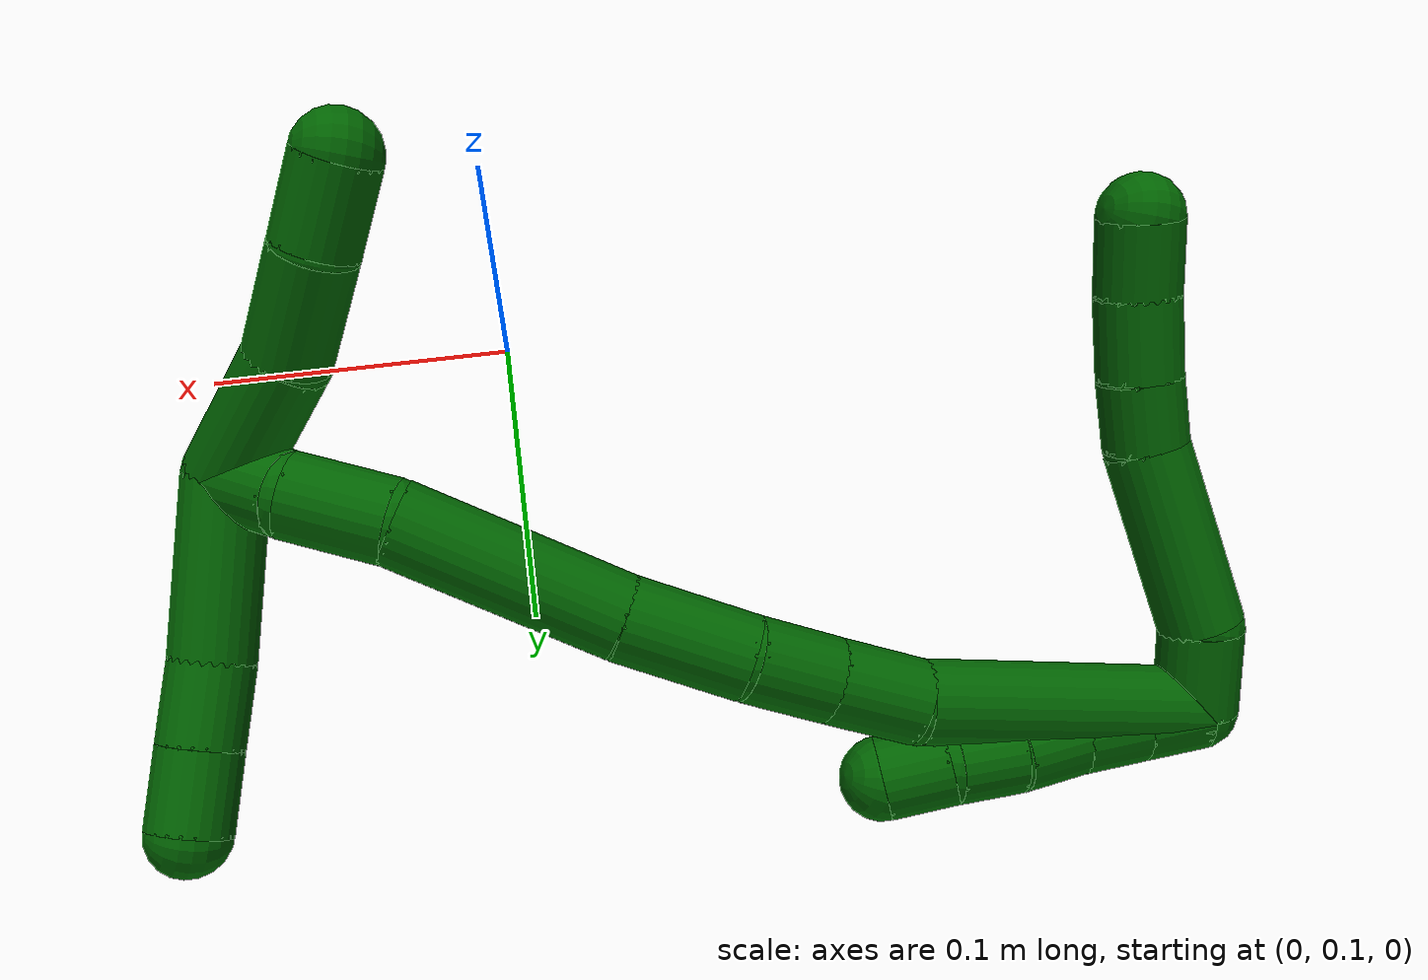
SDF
<sdf version="1.7">
 <world name="default">
  <model name="photoneo_s_sensor">
   <static>1</static>
   <pose>0 0 2 1.57079 1.57079 3.14159</pose>
   <link name="link">
    <inertial><mass>0.1</mass></inertial>
    <sensor name="sensor" type="depth">
     <update_rate>30</update_rate>
     <camera>
      <horizontal_fov>1.22</horizontal_fov>
      <image><width>1920</width><height>1200</height><format>B8G8R8</format></image>
      <clip><near>0.1</near><far>4</far></clip>
      <depth_camera><output>points</output></depth_camera>
     </camera>
     <plugin name="camera_plugin" filename="libgazebo_ros_depth_camera.so">
      <baseline>0.2</baseline>
      <alwaysOn>1</alwaysOn>
      <updateRate>0.0</updateRate>
      <cameraName>camera_ir</cameraName>
      <imageTopicName>/camera/color/image_raw</imageTopicName>
      <cameraInfoTopicName>/camera/color/camera_info</cameraInfoTopicName>
      <depthImageTopicName>/camera/depth/image_raw</depthImageTopicName>
      <depthImageCameraInfoTopicName>/camera/depth/camera_info</depthImageCameraInfoTopicName>
      <pointCloudTopicName>/camera/depth/points</pointCloudTopicName>
      <frameName>fr_optical</frameName>
      <pointCloudCutoff>0.1</pointCloudCutoff>
      <pointCloudCutoffMax>2.0</pointCloudCutoffMax>
      <distortionK1>0</distortionK1>
      <distortionK2>0</distortionK2>
      <distortionK3>0</distortionK3>
      <distortionT1>0</distortionT1>
      <distortionT2>0</distortionT2>
      <CxPrime>0</CxPrime>
      <Cx>0</Cx>
      <Cy>0</Cy>
      <focalLength>0</focalLength>
      <hackBaseline>0</hackBaseline>
     </plugin>
    </sensor>
   </link>
  </model>
  <model name="bin">
   <static>1</static>
   <link name="bottom">
    <collision name="collision-bottom">
     <pose>0 0 -0.01 0 -0 0</pose>
     <geometry><box><size>0.8 0.6 0.02</size></box></geometry>
     <surface>
      <friction><ode><mu>100</mu><mu2>100</mu2></ode></friction>
      <contact><collide_bitmask>65535</collide_bitmask></contact>
     </surface>
    </collision>
   </link>
   <link name="west_wall">
    <collision name="collision-west_wall">
     <pose>-0.41 0 0.1 0 -0 0</pose>
     <geometry><box><size>0.02 0.6 0.2</size></box></geometry>
     <surface>
      <friction><ode><mu>100</mu><mu2>100</mu2></ode></friction>
      <contact><collide_bitmask>65535</collide_bitmask></contact>
     </surface>
    </collision>
   </link>
   <link name="east_wall">
    <collision name="collision-east_wall">
     <pose>0.41 0 0.1 0 -0 0</pose>
     <geometry><box><size>0.02 0.6 0.2</size></box></geometry>
     <surface>
      <friction><ode><mu>100</mu><mu2>100</mu2></ode></friction>
      <contact><collide_bitmask>65535</collide_bitmask></contact>
     </surface>
    </collision>
   </link>
   <link name="south_wall">
    <collision name="collision-south_wall">
     <pose>0 -0.31 0.1 0 -0 0</pose>
     <geometry><box><size>0.8 0.02 0.2</size></box></geometry>
     <surface>
      <friction><ode><mu>100</mu><mu2>100</mu2></ode></friction>
      <contact><collide_bitmask>65535</collide_bitmask></contact>
     </surface>
    </collision>
   </link>
   <link name="north_wall">
    <collision name="collision-north_wall">
     <pose>0 0.31 0.1 0 -0 0</pose>
     <geometry><box><size>0.8 0.02 0.2</size></box></geometry>
     <surface>
      <friction><ode><mu>100</mu><mu2>100</mu2></ode></friction>
      <contact><collide_bitmask>65535</collide_bitmask></contact>
     </surface>
    </collision>
   </link>
  </model>
  <model name="6">
   <static>0</static>
   <link name="6">
    <collision name="collision-cylinder-e_1_2_8">
     <pose>0.011835 0.004859 -0.003293 -2.16646 1.11037 -1.72693</pose>
     <geometry><cylinder><radius>0.0125</radius><length>0.026421</length></cylinder></geometry>
     <surface>
      <friction><ode><mu>1.16</mu><mu2>1.16</mu2><slip1>0</slip1><slip2>0</slip2></ode></friction>
      <contact><ode><kp>1e+06</kp><kd>1</kd><max_vel>0</max_vel><min_depth>0.001</min_depth></ode></contact>
     </surface>
    </collision>
    <visual name="visual-cylinder-e_1_2_8">
     <pose>0.011835 0.004859 -0.003293 -2.16646 1.11037 -1.72693</pose>
     <geometry><cylinder><radius>0.0125</radius><length>0.026421</length></cylinder></geometry>
     <material><ambient>0 0.392157 0.003922 1</ambient></material>
    </visual>
    <collision name="collision-cylinder-e_2_8_9">
     <pose>0.048466 0.012934 -0.020066 -2.90734 1.06117 -2.74574</pose>
     <geometry><cylinder><radius>0.0125</radius><length>0.056812</length></cylinder></geometry>
     <surface>
      <friction><ode><mu>1.16</mu><mu2>1.16</mu2><slip1>0</slip1><slip2>0</slip2></ode></friction>
      <contact><ode><kp>1e+06</kp><kd>1</kd><max_vel>0</max_vel><min_depth>0.001</min_depth></ode></contact>
     </surface>
    </collision>
    <visual name="visual-cylinder-e_2_8_9">
     <pose>0.048466 0.012934 -0.020066 -2.90734 1.06117 -2.74574</pose>
     <geometry><cylinder><radius>0.0125</radius><length>0.056812</length></cylinder></geometry>
     <material><ambient>0 0.392157 0.003922 1</ambient></material>
    </visual>
    <collision name="collision-cylinder-e_3_9_10">
     <pose>0.082395 0.019048 -0.037292 -2.48337 1.09239 -2.11781</pose>
     <geometry><cylinder><radius>0.0125</radius><length>0.020575</length></cylinder></geometry>
     <surface>
      <friction><ode><mu>1.16</mu><mu2>1.16</mu2><slip1>0</slip1><slip2>0</slip2></ode></friction>
      <contact><ode><kp>1e+06</kp><kd>1</kd><max_vel>0</max_vel><min_depth>0.001</min_depth></ode></contact>
     </surface>
    </collision>
    <visual name="visual-cylinder-e_3_9_10">
     <pose>0.082395 0.019048 -0.037292 -2.48337 1.09239 -2.11781</pose>
     <geometry><cylinder><radius>0.0125</radius><length>0.020575</length></cylinder></geometry>
     <material><ambient>0 0.392157 0.003922 1</ambient></material>
    </visual>
    <collision name="collision-cylinder-e_4_10_11">
     <pose>0.102312 0.025663 -0.044784 -2.35995 1.11573 -1.97443</pose>
     <geometry><cylinder><radius>0.0125</radius><length>0.024013</length></cylinder></geometry>
     <surface>
      <friction><ode><mu>1.16</mu><mu2>1.16</mu2><slip1>0</slip1><slip2>0</slip2></ode></friction>
      <contact><ode><kp>1e+06</kp><kd>1</kd><max_vel>0</max_vel><min_depth>0.001</min_depth></ode></contact>
     </surface>
    </collision>
    <visual name="visual-cylinder-e_4_10_11">
     <pose>0.102312 0.025663 -0.044784 -2.35995 1.11573 -1.97443</pose>
     <geometry><cylinder><radius>0.0125</radius><length>0.024013</length></cylinder></geometry>
     <material><ambient>0 0.392157 0.003922 1</ambient></material>
    </visual>
    <collision name="collision-cylinder-e_5_11_6">
     <pose>0.122785 0.033682 -0.051784 -2.21849 1.06277 -1.73702</pose>
     <geometry><cylinder><radius>0.0125</radius><length>0.022179</length></cylinder></geometry>
     <surface>
      <friction><ode><mu>1.16</mu><mu2>1.16</mu2><slip1>0</slip1><slip2>0</slip2></ode></friction>
      <contact><ode><kp>1e+06</kp><kd>1</kd><max_vel>0</max_vel><min_depth>0.001</min_depth></ode></contact>
     </surface>
    </collision>
    <visual name="visual-cylinder-e_5_11_6">
     <pose>0.122785 0.033682 -0.051784 -2.21849 1.06277 -1.73702</pose>
     <geometry><cylinder><radius>0.0125</radius><length>0.022179</length></cylinder></geometry>
     <material><ambient>0 0.392157 0.003922 1</ambient></material>
    </visual>
    <collision name="collision-cylinder-e_1_2_12">
     <pose>-0.002459 -0.002337 -0.009407 2.89813 -0.248399 -1.59108</pose>
     <geometry><cylinder><radius>0.0125</radius><length>0.02</length></cylinder></geometry>
     <surface>
      <friction><ode><mu>1.16</mu><mu2>1.16</mu2><slip1>0</slip1><slip2>0</slip2></ode></friction>
      <contact><ode><kp>1e+06</kp><kd>1</kd><max_vel>0</max_vel><min_depth>0.001</min_depth></ode></contact>
     </surface>
    </collision>
    <visual name="visual-cylinder-e_1_2_12">
     <pose>-0.002459 -0.002337 -0.009407 2.89813 -0.248399 -1.59108</pose>
     <geometry><cylinder><radius>0.0125</radius><length>0.02</length></cylinder></geometry>
     <material><ambient>0 0.392157 0.003922 1</ambient></material>
    </visual>
    <collision name="collision-cylinder-e_2_12_13">
     <pose>-0.007425 -0.006981 -0.028216 2.90092 -0.253485 -1.62318</pose>
     <geometry><cylinder><radius>0.0125</radius><length>0.02</length></cylinder></geometry>
     <surface>
      <friction><ode><mu>1.16</mu><mu2>1.16</mu2><slip1>0</slip1><slip2>0</slip2></ode></friction>
      <contact><ode><kp>1e+06</kp><kd>1</kd><max_vel>0</max_vel><min_depth>0.001</min_depth></ode></contact>
     </surface>
    </collision>
    <visual name="visual-cylinder-e_2_12_13">
     <pose>-0.007425 -0.006981 -0.028216 2.90092 -0.253485 -1.62318</pose>
     <geometry><cylinder><radius>0.0125</radius><length>0.02</length></cylinder></geometry>
     <material><ambient>0 0.392157 0.003922 1</ambient></material>
    </visual>
    <collision name="collision-cylinder-e_3_13_14">
     <pose>-0.013028 -0.010827 -0.047001 2.97899 -0.314658 -2.19263</pose>
     <geometry><cylinder><radius>0.0125</radius><length>0.02</length></cylinder></geometry>
     <surface>
      <friction><ode><mu>1.16</mu><mu2>1.16</mu2><slip1>0</slip1><slip2>0</slip2></ode></friction>
      <contact><ode><kp>1e+06</kp><kd>1</kd><max_vel>0</max_vel><min_depth>0.001</min_depth></ode></contact>
     </surface>
    </collision>
    <visual name="visual-cylinder-e_3_13_14">
     <pose>-0.013028 -0.010827 -0.047001 2.97899 -0.314658 -2.19263</pose>
     <geometry><cylinder><radius>0.0125</radius><length>0.02</length></cylinder></geometry>
     <material><ambient>0 0.392157 0.003922 1</ambient></material>
    </visual>
    <collision name="collision-cylinder-e_4_14_15">
     <pose>-0.01834 -0.01462 -0.065872 2.9084 -0.223644 -1.52864</pose>
     <geometry><cylinder><radius>0.0125</radius><length>0.02</length></cylinder></geometry>
     <surface>
      <friction><ode><mu>1.16</mu><mu2>1.16</mu2><slip1>0</slip1><slip2>0</slip2></ode></friction>
      <contact><ode><kp>1e+06</kp><kd>1</kd><max_vel>0</max_vel><min_depth>0.001</min_depth></ode></contact>
     </surface>
    </collision>
    <visual name="visual-cylinder-e_4_14_15">
     <pose>-0.01834 -0.01462 -0.065872 2.9084 -0.223644 -1.52864</pose>
     <geometry><cylinder><radius>0.0125</radius><length>0.02</length></cylinder></geometry>
     <material><ambient>0 0.392157 0.003922 1</ambient></material>
    </visual>
    <collision name="collision-cylinder-e_5_15_5">
     <pose>-0.02337 -0.021787 -0.083602 2.60404 -0.28504 -0.960536</pose>
     <geometry><cylinder><radius>0.0125</radius><length>0.02</length></cylinder></geometry>
     <surface>
      <friction><ode><mu>1.16</mu><mu2>1.16</mu2><slip1>0</slip1><slip2>0</slip2></ode></friction>
      <contact><ode><kp>1e+06</kp><kd>1</kd><max_vel>0</max_vel><min_depth>0.001</min_depth></ode></contact>
     </surface>
    </collision>
    <visual name="visual-cylinder-e_5_15_5">
     <pose>-0.02337 -0.021787 -0.083602 2.60404 -0.28504 -0.960536</pose>
     <geometry><cylinder><radius>0.0125</radius><length>0.02</length></cylinder></geometry>
     <material><ambient>0 0.392157 0.003922 1</ambient></material>
    </visual>
    <collision name="collision-cylinder-e_1_2_16">
     <pose>-0.001981 -0.005892 -0.044954 3.01126 -0.043666 -0.645803</pose>
     <geometry><cylinder><radius>0.0125</radius><length>0.090764</length></cylinder></geometry>
     <surface>
      <friction><ode><mu>1.16</mu><mu2>1.16</mu2><slip1>0</slip1><slip2>0</slip2></ode></friction>
      <contact><ode><kp>1e+06</kp><kd>1</kd><max_vel>0</max_vel><min_depth>0.001</min_depth></ode></contact>
     </surface>
    </collision>
    <visual name="visual-cylinder-e_1_2_16">
     <pose>-0.001981 -0.005892 -0.044954 3.01126 -0.043666 -0.645803</pose>
     <geometry><cylinder><radius>0.0125</radius><length>0.090764</length></cylinder></geometry>
     <material><ambient>0 0.392157 0.003922 1</ambient></material>
    </visual>
    <collision name="collision-cylinder-e_2_16_17">
     <pose>-0.001712 -0.013903 -0.103143 2.98292 0.166359 1.61831</pose>
     <geometry><cylinder><radius>0.0125</radius><length>0.02718</length></cylinder></geometry>
     <surface>
      <friction><ode><mu>1.16</mu><mu2>1.16</mu2><slip1>0</slip1><slip2>0</slip2></ode></friction>
      <contact><ode><kp>1e+06</kp><kd>1</kd><max_vel>0</max_vel><min_depth>0.001</min_depth></ode></contact>
     </surface>
    </collision>
    <visual name="visual-cylinder-e_2_16_17">
     <pose>-0.001712 -0.013903 -0.103143 2.98292 0.166359 1.61831</pose>
     <geometry><cylinder><radius>0.0125</radius><length>0.02718</length></cylinder></geometry>
     <material><ambient>0 0.392157 0.003922 1</ambient></material>
    </visual>
    <collision name="collision-cylinder-e_3_17_18">
     <pose>0.002722 -0.017497 -0.128614 3.02149 0.175309 1.94156</pose>
     <geometry><cylinder><radius>0.0125</radius><length>0.025036</length></cylinder></geometry>
     <surface>
      <friction><ode><mu>1.16</mu><mu2>1.16</mu2><slip1>0</slip1><slip2>0</slip2></ode></friction>
      <contact><ode><kp>1e+06</kp><kd>1</kd><max_vel>0</max_vel><min_depth>0.001</min_depth></ode></contact>
     </surface>
    </collision>
    <visual name="visual-cylinder-e_3_17_18">
     <pose>0.002722 -0.017497 -0.128614 3.02149 0.175309 1.94156</pose>
     <geometry><cylinder><radius>0.0125</radius><length>0.025036</length></cylinder></geometry>
     <material><ambient>0 0.392157 0.003922 1</ambient></material>
    </visual>
    <collision name="collision-cylinder-e_4_18_19">
     <pose>0.009349 -0.024031 -0.158143 2.85709 0.241819 1.40708</pose>
     <geometry><cylinder><radius>0.0125</radius><length>0.037111</length></cylinder></geometry>
     <surface>
      <friction><ode><mu>1.16</mu><mu2>1.16</mu2><slip1>0</slip1><slip2>0</slip2></ode></friction>
      <contact><ode><kp>1e+06</kp><kd>1</kd><max_vel>0</max_vel><min_depth>0.001</min_depth></ode></contact>
     </surface>
    </collision>
    <visual name="visual-cylinder-e_4_18_19">
     <pose>0.009349 -0.024031 -0.158143 2.85709 0.241819 1.40708</pose>
     <geometry><cylinder><radius>0.0125</radius><length>0.037111</length></cylinder></geometry>
     <material><ambient>0 0.392157 0.003922 1</ambient></material>
    </visual>
    <collision name="collision-cylinder-e_5_19_20">
     <pose>0.024646 -0.037658 -0.206342 2.8711 0.326293 1.76002</pose>
     <geometry><cylinder><radius>0.0125</radius><length>0.06772</length></cylinder></geometry>
     <surface>
      <friction><ode><mu>1.16</mu><mu2>1.16</mu2><slip1>0</slip1><slip2>0</slip2></ode></friction>
      <contact><ode><kp>1e+06</kp><kd>1</kd><max_vel>0</max_vel><min_depth>0.001</min_depth></ode></contact>
     </surface>
    </collision>
    <visual name="visual-cylinder-e_5_19_20">
     <pose>0.024646 -0.037658 -0.206342 2.8711 0.326293 1.76002</pose>
     <geometry><cylinder><radius>0.0125</radius><length>0.06772</length></cylinder></geometry>
     <material><ambient>0 0.392157 0.003922 1</ambient></material>
    </visual>
    <collision name="collision-cylinder-e_6_20_21">
     <pose>0.038526 -0.052878 -0.250587 2.67902 0.200371 0.806862</pose>
     <geometry><cylinder><radius>0.0125</radius><length>0.030415</length></cylinder></geometry>
     <surface>
      <friction><ode><mu>1.16</mu><mu2>1.16</mu2><slip1>0</slip1><slip2>0</slip2></ode></friction>
      <contact><ode><kp>1e+06</kp><kd>1</kd><max_vel>0</max_vel><min_depth>0.001</min_depth></ode></contact>
     </surface>
    </collision>
    <visual name="visual-cylinder-e_6_20_21">
     <pose>0.038526 -0.052878 -0.250587 2.67902 0.200371 0.806862</pose>
     <geometry><cylinder><radius>0.0125</radius><length>0.030415</length></cylinder></geometry>
     <material><ambient>0 0.392157 0.003922 1</ambient></material>
    </visual>
    <collision name="collision-cylinder-e_7_21_1">
     <pose>0.044284 -0.067176 -0.271174 2.32958 0.253576 0.576521</pose>
     <geometry><cylinder><radius>0.0125</radius><length>0.021773</length></cylinder></geometry>
     <surface>
      <friction><ode><mu>1.16</mu><mu2>1.16</mu2><slip1>0</slip1><slip2>0</slip2></ode></friction>
      <contact><ode><kp>1e+06</kp><kd>1</kd><max_vel>0</max_vel><min_depth>0.001</min_depth></ode></contact>
     </surface>
    </collision>
    <visual name="visual-cylinder-e_7_21_1">
     <pose>0.044284 -0.067176 -0.271174 2.32958 0.253576 0.576521</pose>
     <geometry><cylinder><radius>0.0125</radius><length>0.021773</length></cylinder></geometry>
     <material><ambient>0 0.392157 0.003922 1</ambient></material>
    </visual>
    <collision name="collision-cylinder-e_1_1_22">
     <pose>0.021469 -0.079048 -0.277272 1.30427 -1.40103 -1.14404</pose>
     <geometry><cylinder><radius>0.0125</radius><length>0.051837</length></cylinder></geometry>
     <surface>
      <friction><ode><mu>1.16</mu><mu2>1.16</mu2><slip1>0</slip1><slip2>0</slip2></ode></friction>
      <contact><ode><kp>1e+06</kp><kd>1</kd><max_vel>0</max_vel><min_depth>0.001</min_depth></ode></contact>
     </surface>
    </collision>
    <visual name="visual-cylinder-e_1_1_22">
     <pose>0.021469 -0.079048 -0.277272 1.30427 -1.40103 -1.14404</pose>
     <geometry><cylinder><radius>0.0125</radius><length>0.051837</length></cylinder></geometry>
     <material><ambient>0 0.392157 0.003922 1</ambient></material>
    </visual>
    <collision name="collision-cylinder-e_2_22_23">
     <pose>-0.016153 -0.084058 -0.276516 2.03943 -1.49805 -1.97344</pose>
     <geometry><cylinder><radius>0.0125</radius><length>0.024217</length></cylinder></geometry>
     <surface>
      <friction><ode><mu>1.16</mu><mu2>1.16</mu2><slip1>0</slip1><slip2>0</slip2></ode></friction>
      <contact><ode><kp>1e+06</kp><kd>1</kd><max_vel>0</max_vel><min_depth>0.001</min_depth></ode></contact>
     </surface>
    </collision>
    <visual name="visual-cylinder-e_2_22_23">
     <pose>-0.016153 -0.084058 -0.276516 2.03943 -1.49805 -1.97344</pose>
     <geometry><cylinder><radius>0.0125</radius><length>0.024217</length></cylinder></geometry>
     <material><ambient>0 0.392157 0.003922 1</ambient></material>
    </visual>
    <collision name="collision-cylinder-e_3_23_4">
     <pose>-0.040173 -0.08564 -0.277216 1.93399 -1.49954 -1.86652</pose>
     <geometry><cylinder><radius>0.0125</radius><length>0.023946</length></cylinder></geometry>
     <surface>
      <friction><ode><mu>1.16</mu><mu2>1.16</mu2><slip1>0</slip1><slip2>0</slip2></ode></friction>
      <contact><ode><kp>1e+06</kp><kd>1</kd><max_vel>0</max_vel><min_depth>0.001</min_depth></ode></contact>
     </surface>
    </collision>
    <visual name="visual-cylinder-e_3_23_4">
     <pose>-0.040173 -0.08564 -0.277216 1.93399 -1.49954 -1.86652</pose>
     <geometry><cylinder><radius>0.0125</radius><length>0.023946</length></cylinder></geometry>
     <material><ambient>0 0.392157 0.003922 1</ambient></material>
    </visual>
    <collision name="collision-cylinder-e_1_1_24">
     <pose>0.061574 -0.060388 -0.274128 -1.2815 0.768456 -0.585677</pose>
     <geometry><cylinder><radius>0.0125</radius><length>0.041897</length></cylinder></geometry>
     <surface>
      <friction><ode><mu>1.16</mu><mu2>1.16</mu2><slip1>0</slip1><slip2>0</slip2></ode></friction>
      <contact><ode><kp>1e+06</kp><kd>1</kd><max_vel>0</max_vel><min_depth>0.001</min_depth></ode></contact>
     </surface>
    </collision>
    <visual name="visual-cylinder-e_1_1_24">
     <pose>0.061574 -0.060388 -0.274128 -1.2815 0.768456 -0.585677</pose>
     <geometry><cylinder><radius>0.0125</radius><length>0.041897</length></cylinder></geometry>
     <material><ambient>0 0.392157 0.003922 1</ambient></material>
    </visual>
    <collision name="collision-cylinder-e_2_24_25">
     <pose>0.088617 -0.035377 -0.269637 -1.5524 0.867844 -0.853893</pose>
     <geometry><cylinder><radius>0.0125</radius><length>0.032724</length></cylinder></geometry>
     <surface>
      <friction><ode><mu>1.16</mu><mu2>1.16</mu2><slip1>0</slip1><slip2>0</slip2></ode></friction>
      <contact><ode><kp>1e+06</kp><kd>1</kd><max_vel>0</max_vel><min_depth>0.001</min_depth></ode></contact>
     </surface>
    </collision>
    <visual name="visual-cylinder-e_2_24_25">
     <pose>0.088617 -0.035377 -0.269637 -1.5524 0.867844 -0.853893</pose>
     <geometry><cylinder><radius>0.0125</radius><length>0.032724</length></cylinder></geometry>
     <material><ambient>0 0.392157 0.003922 1</ambient></material>
    </visual>
    <collision name="collision-cylinder-e_3_25_3">
     <pose>0.112045 -0.018401 -0.268915 -1.48856 1.0402 -0.970703</pose>
     <geometry><cylinder><radius>0.0125</radius><length>0.025379</length></cylinder></geometry>
     <surface>
      <friction><ode><mu>1.16</mu><mu2>1.16</mu2><slip1>0</slip1><slip2>0</slip2></ode></friction>
      <contact><ode><kp>1e+06</kp><kd>1</kd><max_vel>0</max_vel><min_depth>0.001</min_depth></ode></contact>
     </surface>
    </collision>
    <visual name="visual-cylinder-e_3_25_3">
     <pose>0.112045 -0.018401 -0.268915 -1.48856 1.0402 -0.970703</pose>
     <geometry><cylinder><radius>0.0125</radius><length>0.025379</length></cylinder></geometry>
     <material><ambient>0 0.392157 0.003922 1</ambient></material>
    </visual>
    <collision name="collision-sphere-3">
     <pose>0.12299 -0.012001 -0.268387 0 -0 0</pose>
     <geometry><sphere><radius>0.0125</radius></sphere></geometry>
     <surface>
      <friction><ode><mu>1.16</mu><mu2>1.16</mu2><slip1>0</slip1><slip2>0</slip2></ode></friction>
      <contact><ode><kp>1e+06</kp><kd>1</kd><max_vel>0</max_vel><min_depth>0.001</min_depth></ode></contact>
     </surface>
    </collision>
    <visual name="visual-sphere-3">
     <pose>0.12299 -0.012001 -0.268387 0 -0 0</pose>
     <geometry><sphere><radius>0.0125</radius></sphere></geometry>
     <material><ambient>0 0.392157 0.003922 1</ambient></material>
    </visual>
    <collision name="collision-sphere-25">
     <pose>0.1011 -0.024801 -0.269442 0 -0 0</pose>
     <geometry><sphere><radius>0.0125</radius></sphere></geometry>
     <surface>
      <friction><ode><mu>1.16</mu><mu2>1.16</mu2><slip1>0</slip1><slip2>0</slip2></ode></friction>
      <contact><ode><kp>1e+06</kp><kd>1</kd><max_vel>0</max_vel><min_depth>0.001</min_depth></ode></contact>
     </surface>
    </collision>
    <visual name="visual-sphere-25">
     <pose>0.1011 -0.024801 -0.269442 0 -0 0</pose>
     <geometry><sphere><radius>0.0125</radius></sphere></geometry>
     <material><ambient>0 0.392157 0.003922 1</ambient></material>
    </visual>
    <collision name="collision-sphere-24">
     <pose>0.076134 -0.045952 -0.269831 0 -0 0</pose>
     <geometry><sphere><radius>0.0125</radius></sphere></geometry>
     <surface>
      <friction><ode><mu>1.16</mu><mu2>1.16</mu2><slip1>0</slip1><slip2>0</slip2></ode></friction>
      <contact><ode><kp>1e+06</kp><kd>1</kd><max_vel>0</max_vel><min_depth>0.001</min_depth></ode></contact>
     </surface>
    </collision>
    <visual name="visual-sphere-24">
     <pose>0.076134 -0.045952 -0.269831 0 -0 0</pose>
     <geometry><sphere><radius>0.0125</radius></sphere></geometry>
     <material><ambient>0 0.392157 0.003922 1</ambient></material>
    </visual>
    <collision name="collision-sphere-4">
     <pose>-0.052115 -0.086436 -0.277519 0 -0 0</pose>
     <geometry><sphere><radius>0.0125</radius></sphere></geometry>
     <surface>
      <friction><ode><mu>1.16</mu><mu2>1.16</mu2><slip1>0</slip1><slip2>0</slip2></ode></friction>
      <contact><ode><kp>1e+06</kp><kd>1</kd><max_vel>0</max_vel><min_depth>0.001</min_depth></ode></contact>
     </surface>
    </collision>
    <visual name="visual-sphere-4">
     <pose>-0.052115 -0.086436 -0.277519 0 -0 0</pose>
     <geometry><sphere><radius>0.0125</radius></sphere></geometry>
     <material><ambient>0 0.392157 0.003922 1</ambient></material>
    </visual>
    <collision name="collision-sphere-23">
     <pose>-0.02823 -0.084843 -0.276913 0 -0 0</pose>
     <geometry><sphere><radius>0.0125</radius></sphere></geometry>
     <surface>
      <friction><ode><mu>1.16</mu><mu2>1.16</mu2><slip1>0</slip1><slip2>0</slip2></ode></friction>
      <contact><ode><kp>1e+06</kp><kd>1</kd><max_vel>0</max_vel><min_depth>0.001</min_depth></ode></contact>
     </surface>
    </collision>
    <visual name="visual-sphere-23">
     <pose>-0.02823 -0.084843 -0.276913 0 -0 0</pose>
     <geometry><sphere><radius>0.0125</radius></sphere></geometry>
     <material><ambient>0 0.392157 0.003922 1</ambient></material>
    </visual>
    <collision name="collision-sphere-22">
     <pose>-0.004077 -0.083272 -0.276118 0 -0 0</pose>
     <geometry><sphere><radius>0.0125</radius></sphere></geometry>
     <surface>
      <friction><ode><mu>1.16</mu><mu2>1.16</mu2><slip1>0</slip1><slip2>0</slip2></ode></friction>
      <contact><ode><kp>1e+06</kp><kd>1</kd><max_vel>0</max_vel><min_depth>0.001</min_depth></ode></contact>
     </surface>
    </collision>
    <visual name="visual-sphere-22">
     <pose>-0.004077 -0.083272 -0.276118 0 -0 0</pose>
     <geometry><sphere><radius>0.0125</radius></sphere></geometry>
     <material><ambient>0 0.392157 0.003922 1</ambient></material>
    </visual>
    <collision name="collision-sphere-1">
     <pose>0.047015 -0.074824 -0.278425 0 -0 0</pose>
     <geometry><sphere><radius>0.0125</radius></sphere></geometry>
     <surface>
      <friction><ode><mu>1.16</mu><mu2>1.16</mu2><slip1>0</slip1><slip2>0</slip2></ode></friction>
      <contact><ode><kp>1e+06</kp><kd>1</kd><max_vel>0</max_vel><min_depth>0.001</min_depth></ode></contact>
     </surface>
    </collision>
    <visual name="visual-sphere-1">
     <pose>0.047015 -0.074824 -0.278425 0 -0 0</pose>
     <geometry><sphere><radius>0.0125</radius></sphere></geometry>
     <material><ambient>0 0.392157 0.003922 1</ambient></material>
    </visual>
    <collision name="collision-sphere-21">
     <pose>0.041553 -0.059529 -0.263924 0 -0 0</pose>
     <geometry><sphere><radius>0.0125</radius></sphere></geometry>
     <surface>
      <friction><ode><mu>1.16</mu><mu2>1.16</mu2><slip1>0</slip1><slip2>0</slip2></ode></friction>
      <contact><ode><kp>1e+06</kp><kd>1</kd><max_vel>0</max_vel><min_depth>0.001</min_depth></ode></contact>
     </surface>
    </collision>
    <visual name="visual-sphere-21">
     <pose>0.041553 -0.059529 -0.263924 0 -0 0</pose>
     <geometry><sphere><radius>0.0125</radius></sphere></geometry>
     <material><ambient>0 0.392157 0.003922 1</ambient></material>
    </visual>
    <collision name="collision-sphere-6">
     <pose>0.132474 0.037984 -0.055039 0 -0 0</pose>
     <geometry><sphere><radius>0.0125</radius></sphere></geometry>
     <surface>
      <friction><ode><mu>1.16</mu><mu2>1.16</mu2><slip1>0</slip1><slip2>0</slip2></ode></friction>
      <contact><ode><kp>1e+06</kp><kd>1</kd><max_vel>0</max_vel><min_depth>0.001</min_depth></ode></contact>
     </surface>
    </collision>
    <visual name="visual-sphere-6">
     <pose>0.132474 0.037984 -0.055039 0 -0 0</pose>
     <geometry><sphere><radius>0.0125</radius></sphere></geometry>
     <material><ambient>0 0.392157 0.003922 1</ambient></material>
    </visual>
    <collision name="collision-sphere-11">
     <pose>0.113096 0.02938 -0.04853 0 -0 0</pose>
     <geometry><sphere><radius>0.0125</radius></sphere></geometry>
     <surface>
      <friction><ode><mu>1.16</mu><mu2>1.16</mu2><slip1>0</slip1><slip2>0</slip2></ode></friction>
      <contact><ode><kp>1e+06</kp><kd>1</kd><max_vel>0</max_vel><min_depth>0.001</min_depth></ode></contact>
     </surface>
    </collision>
    <visual name="visual-sphere-11">
     <pose>0.113096 0.02938 -0.04853 0 -0 0</pose>
     <geometry><sphere><radius>0.0125</radius></sphere></geometry>
     <material><ambient>0 0.392157 0.003922 1</ambient></material>
    </visual>
    <collision name="collision-sphere-10">
     <pose>0.091527 0.021945 -0.041039 0 -0 0</pose>
     <geometry><sphere><radius>0.0125</radius></sphere></geometry>
     <surface>
      <friction><ode><mu>1.16</mu><mu2>1.16</mu2><slip1>0</slip1><slip2>0</slip2></ode></friction>
      <contact><ode><kp>1e+06</kp><kd>1</kd><max_vel>0</max_vel><min_depth>0.001</min_depth></ode></contact>
     </surface>
    </collision>
    <visual name="visual-sphere-10">
     <pose>0.091527 0.021945 -0.041039 0 -0 0</pose>
     <geometry><sphere><radius>0.0125</radius></sphere></geometry>
     <material><ambient>0 0.392157 0.003922 1</ambient></material>
    </visual>
    <collision name="collision-sphere-9">
     <pose>0.073262 0.016151 -0.033546 0 -0 0</pose>
     <geometry><sphere><radius>0.0125</radius></sphere></geometry>
     <surface>
      <friction><ode><mu>1.16</mu><mu2>1.16</mu2><slip1>0</slip1><slip2>0</slip2></ode></friction>
      <contact><ode><kp>1e+06</kp><kd>1</kd><max_vel>0</max_vel><min_depth>0.001</min_depth></ode></contact>
     </surface>
    </collision>
    <visual name="visual-sphere-9">
     <pose>0.073262 0.016151 -0.033546 0 -0 0</pose>
     <geometry><sphere><radius>0.0125</radius></sphere></geometry>
     <material><ambient>0 0.392157 0.003922 1</ambient></material>
    </visual>
    <collision name="collision-sphere-2">
     <geometry><sphere><radius>0.0125</radius></sphere></geometry>
     <surface>
      <friction><ode><mu>1.16</mu><mu2>1.16</mu2><slip1>0</slip1><slip2>0</slip2></ode></friction>
      <contact><ode><kp>1e+06</kp><kd>1</kd><max_vel>0</max_vel><min_depth>0.001</min_depth></ode></contact>
     </surface>
    </collision>
    <visual name="visual-sphere-2">
     <geometry><sphere><radius>0.0125</radius></sphere></geometry>
     <material><ambient>0 0.392157 0.003922 1</ambient></material>
    </visual>
    <collision name="collision-sphere-19">
     <pose>0.013792 -0.029087 -0.175435 0 -0 0</pose>
     <geometry><sphere><radius>0.0125</radius></sphere></geometry>
     <surface>
      <friction><ode><mu>1.16</mu><mu2>1.16</mu2><slip1>0</slip1><slip2>0</slip2></ode></friction>
      <contact><ode><kp>1e+06</kp><kd>1</kd><max_vel>0</max_vel><min_depth>0.001</min_depth></ode></contact>
     </surface>
    </collision>
    <visual name="visual-sphere-19">
     <pose>0.013792 -0.029087 -0.175435 0 -0 0</pose>
     <geometry><sphere><radius>0.0125</radius></sphere></geometry>
     <material><ambient>0 0.392157 0.003922 1</ambient></material>
    </visual>
    <collision name="collision-sphere-8">
     <pose>0.02367 0.009718 -0.006587 0 -0 0</pose>
     <geometry><sphere><radius>0.0125</radius></sphere></geometry>
     <surface>
      <friction><ode><mu>1.16</mu><mu2>1.16</mu2><slip1>0</slip1><slip2>0</slip2></ode></friction>
      <contact><ode><kp>1e+06</kp><kd>1</kd><max_vel>0</max_vel><min_depth>0.001</min_depth></ode></contact>
     </surface>
    </collision>
    <visual name="visual-sphere-8">
     <pose>0.02367 0.009718 -0.006587 0 -0 0</pose>
     <geometry><sphere><radius>0.0125</radius></sphere></geometry>
     <material><ambient>0 0.392157 0.003922 1</ambient></material>
    </visual>
    <collision name="collision-sphere-12">
     <pose>-0.004917 -0.004673 -0.018814 0 -0 0</pose>
     <geometry><sphere><radius>0.0125</radius></sphere></geometry>
     <surface>
      <friction><ode><mu>1.16</mu><mu2>1.16</mu2><slip1>0</slip1><slip2>0</slip2></ode></friction>
      <contact><ode><kp>1e+06</kp><kd>1</kd><max_vel>0</max_vel><min_depth>0.001</min_depth></ode></contact>
     </surface>
    </collision>
    <visual name="visual-sphere-12">
     <pose>-0.004917 -0.004673 -0.018814 0 -0 0</pose>
     <geometry><sphere><radius>0.0125</radius></sphere></geometry>
     <material><ambient>0 0.392157 0.003922 1</ambient></material>
    </visual>
    <collision name="collision-sphere-13">
     <pose>-0.009933 -0.009288 -0.037617 0 -0 0</pose>
     <geometry><sphere><radius>0.0125</radius></sphere></geometry>
     <surface>
      <friction><ode><mu>1.16</mu><mu2>1.16</mu2><slip1>0</slip1><slip2>0</slip2></ode></friction>
      <contact><ode><kp>1e+06</kp><kd>1</kd><max_vel>0</max_vel><min_depth>0.001</min_depth></ode></contact>
     </surface>
    </collision>
    <visual name="visual-sphere-13">
     <pose>-0.009933 -0.009288 -0.037617 0 -0 0</pose>
     <geometry><sphere><radius>0.0125</radius></sphere></geometry>
     <material><ambient>0 0.392157 0.003922 1</ambient></material>
    </visual>
    <collision name="collision-sphere-14">
     <pose>-0.016122 -0.012367 -0.056385 0 -0 0</pose>
     <geometry><sphere><radius>0.0125</radius></sphere></geometry>
     <surface>
      <friction><ode><mu>1.16</mu><mu2>1.16</mu2><slip1>0</slip1><slip2>0</slip2></ode></friction>
      <contact><ode><kp>1e+06</kp><kd>1</kd><max_vel>0</max_vel><min_depth>0.001</min_depth></ode></contact>
     </surface>
    </collision>
    <visual name="visual-sphere-14">
     <pose>-0.016122 -0.012367 -0.056385 0 -0 0</pose>
     <geometry><sphere><radius>0.0125</radius></sphere></geometry>
     <material><ambient>0 0.392157 0.003922 1</ambient></material>
    </visual>
    <collision name="collision-sphere-15">
     <pose>-0.020558 -0.016873 -0.075359 0 -0 0</pose>
     <geometry><sphere><radius>0.0125</radius></sphere></geometry>
     <surface>
      <friction><ode><mu>1.16</mu><mu2>1.16</mu2><slip1>0</slip1><slip2>0</slip2></ode></friction>
      <contact><ode><kp>1e+06</kp><kd>1</kd><max_vel>0</max_vel><min_depth>0.001</min_depth></ode></contact>
     </surface>
    </collision>
    <visual name="visual-sphere-15">
     <pose>-0.020558 -0.016873 -0.075359 0 -0 0</pose>
     <geometry><sphere><radius>0.0125</radius></sphere></geometry>
     <material><ambient>0 0.392157 0.003922 1</ambient></material>
    </visual>
    <collision name="collision-sphere-5">
     <pose>-0.026182 -0.026701 -0.091845 0 -0 0</pose>
     <geometry><sphere><radius>0.0125</radius></sphere></geometry>
     <surface>
      <friction><ode><mu>1.16</mu><mu2>1.16</mu2><slip1>0</slip1><slip2>0</slip2></ode></friction>
      <contact><ode><kp>1e+06</kp><kd>1</kd><max_vel>0</max_vel><min_depth>0.001</min_depth></ode></contact>
     </surface>
    </collision>
    <visual name="visual-sphere-5">
     <pose>-0.026182 -0.026701 -0.091845 0 -0 0</pose>
     <geometry><sphere><radius>0.0125</radius></sphere></geometry>
     <material><ambient>0 0.392157 0.003922 1</ambient></material>
    </visual>
    <collision name="collision-sphere-16">
     <pose>-0.003962 -0.011785 -0.089909 0 -0 0</pose>
     <geometry><sphere><radius>0.0125</radius></sphere></geometry>
     <surface>
      <friction><ode><mu>1.16</mu><mu2>1.16</mu2><slip1>0</slip1><slip2>0</slip2></ode></friction>
      <contact><ode><kp>1e+06</kp><kd>1</kd><max_vel>0</max_vel><min_depth>0.001</min_depth></ode></contact>
     </surface>
    </collision>
    <visual name="visual-sphere-16">
     <pose>-0.003962 -0.011785 -0.089909 0 -0 0</pose>
     <geometry><sphere><radius>0.0125</radius></sphere></geometry>
     <material><ambient>0 0.392157 0.003922 1</ambient></material>
    </visual>
    <collision name="collision-sphere-17">
     <pose>0.000539 -0.01602 -0.116377 0 -0 0</pose>
     <geometry><sphere><radius>0.0125</radius></sphere></geometry>
     <surface>
      <friction><ode><mu>1.16</mu><mu2>1.16</mu2><slip1>0</slip1><slip2>0</slip2></ode></friction>
      <contact><ode><kp>1e+06</kp><kd>1</kd><max_vel>0</max_vel><min_depth>0.001</min_depth></ode></contact>
     </surface>
    </collision>
    <visual name="visual-sphere-17">
     <pose>0.000539 -0.01602 -0.116377 0 -0 0</pose>
     <geometry><sphere><radius>0.0125</radius></sphere></geometry>
     <material><ambient>0 0.392157 0.003922 1</ambient></material>
    </visual>
    <collision name="collision-sphere-18">
     <pose>0.004905 -0.018974 -0.140852 0 -0 0</pose>
     <geometry><sphere><radius>0.0125</radius></sphere></geometry>
     <surface>
      <friction><ode><mu>1.16</mu><mu2>1.16</mu2><slip1>0</slip1><slip2>0</slip2></ode></friction>
      <contact><ode><kp>1e+06</kp><kd>1</kd><max_vel>0</max_vel><min_depth>0.001</min_depth></ode></contact>
     </surface>
    </collision>
    <visual name="visual-sphere-18">
     <pose>0.004905 -0.018974 -0.140852 0 -0 0</pose>
     <geometry><sphere><radius>0.0125</radius></sphere></geometry>
     <material><ambient>0 0.392157 0.003922 1</ambient></material>
    </visual>
    <collision name="collision-sphere-20">
     <pose>0.035499 -0.046228 -0.23725 0 -0 0</pose>
     <geometry><sphere><radius>0.0125</radius></sphere></geometry>
     <surface>
      <friction><ode><mu>1.16</mu><mu2>1.16</mu2><slip1>0</slip1><slip2>0</slip2></ode></friction>
      <contact><ode><kp>1e+06</kp><kd>1</kd><max_vel>0</max_vel><min_depth>0.001</min_depth></ode></contact>
     </surface>
    </collision>
    <visual name="visual-sphere-20">
     <pose>0.035499 -0.046228 -0.23725 0 -0 0</pose>
     <geometry><sphere><radius>0.0125</radius></sphere></geometry>
     <material><ambient>0 0.392157 0.003922 1</ambient></material>
    </visual>
    <inertial>
     <pose>0.027634 -0.024953 -0.142951 0 -0 0</pose>
     <mass>0.75</mass>
     <inertia>
      <ixx>3.9e-05</ixx>
      <ixy>0</ixy>
      <ixz>0</ixz>
      <iyy>-1.8e-05</iyy>
      <iyz>0</iyz>
      <izz>-4.4e-05</izz>
     </inertia>
    </inertial>
   </link>
   <pose>-0.193704 0.260742 0.011959 2.01226 -0.328884 -1.7638</pose>
  </model>
 </world>
</sdf>
